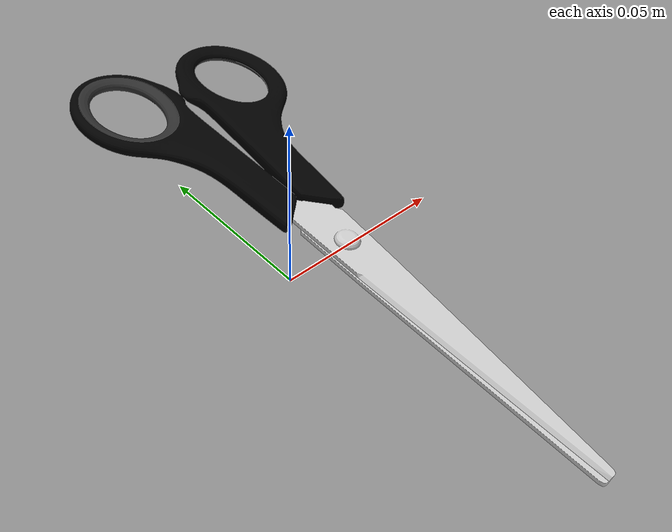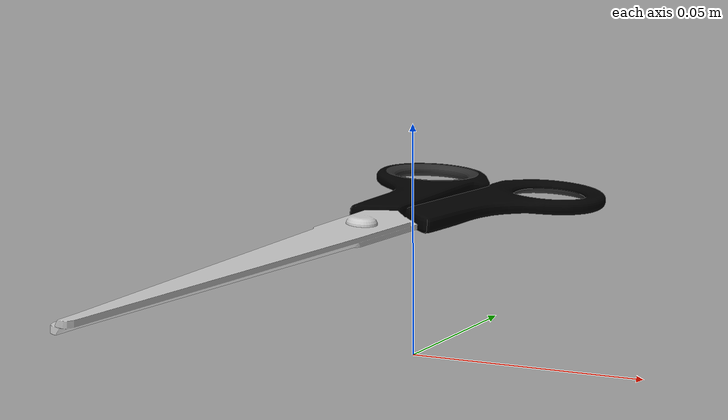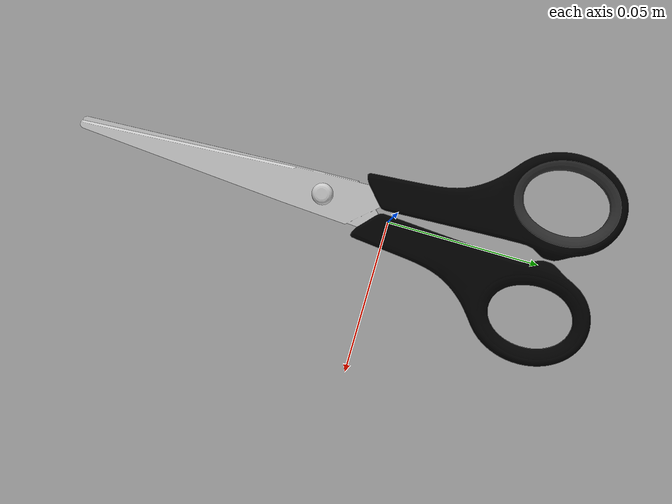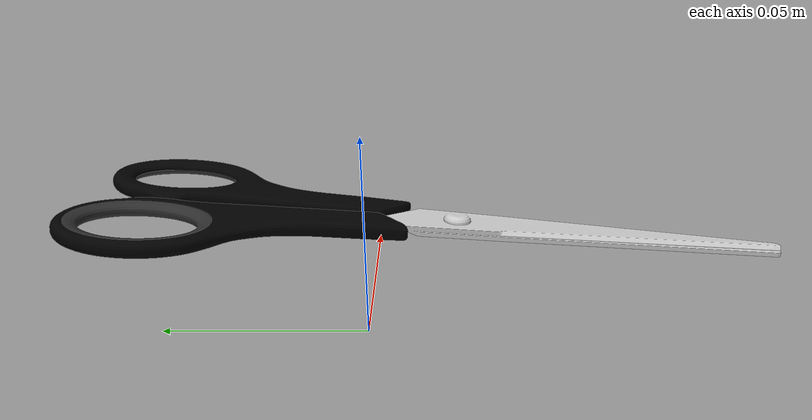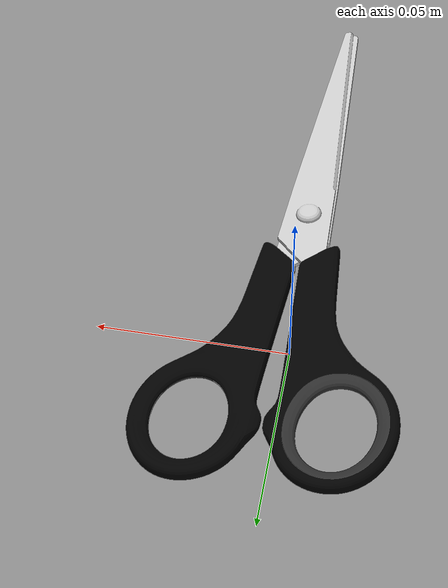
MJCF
<?xml version='1.0' encoding='utf-8'?>
<mujoco model="scissors">
  <default>
    <default class="visual">
      <geom group="1" type="mesh" contype="0" conaffinity="0" />
    </default>
    <default class="collision">
      <geom group="0" type="mesh" contype="1" conaffinity="1"  solref="0.01 1" solimp="0.99 0.99 0.01" margin="0.001" priority="1" friction="5 2 0.0001"/>
    </default>
  </default>
  <asset>
    <material name="PLASTIC_BLACK" specular="0.5" shininess="0.5" rgba="0.000000 0.000000 0.000000 1.000000" />
    <material name="metal" specular="0.5" shininess="0.5" rgba="0.800000 0.800000 0.800000 1.000000" />
    <material name="plastic_grey" specular="0.5" shininess="0.5" rgba="0.179368 0.179368 0.179368 1.000000" />
    <mesh file="scissors_0.obj" name="scissors_0" scale="1.25 1.25 1.25" />
    <mesh file="scissors_1.obj" name="scissors_1" scale="1.25 1.25 1.25" />
    <mesh file="scissors_2.obj" name="scissors_2" scale="1.25 1.25 1.25" />
    <mesh file="scissors_collision_0.obj" name="scissors_collision_0" scale="1.25 1.25 1.25" />
    <mesh file="scissors_collision_1.obj" name="scissors_collision_1" scale="1.25 1.25 1.25" />
    <mesh file="scissors_collision_2.obj" name="scissors_collision_2" scale="1.25 1.25 1.25" />
    <mesh file="scissors_collision_3.obj" name="scissors_collision_3" scale="1.25 1.25 1.25" />
    <mesh file="scissors_collision_4.obj" name="scissors_collision_4" scale="1.25 1.25 1.25" />
    <mesh file="scissors_collision_5.obj" name="scissors_collision_5" scale="1.25 1.25 1.25" />
    <mesh file="scissors_collision_6.obj" name="scissors_collision_6" scale="1.25 1.25 1.25" />
    <mesh file="scissors_collision_7.obj" name="scissors_collision_7" scale="1.25 1.25 1.25" />
    <mesh file="scissors_collision_8.obj" name="scissors_collision_8" scale="1.25 1.25 1.25" />
  </asset>
  <worldbody>
    <body name="base" pos="0 0 0">
      <body name="object">
        <body name="auto_center" pos="-0.000662 -0.101268 0">
          <geom mesh="scissors_0" material="PLASTIC_BLACK" class="visual" />
          <geom mesh="scissors_1" material="plastic_grey" class="visual" />
          <geom mesh="scissors_2" material="metal" class="visual" />
          <geom mesh="scissors_collision_0" rgba="1 0 0 0" class="collision" />
          <geom mesh="scissors_collision_1" rgba="1 0 0 0" class="collision" />
          <geom mesh="scissors_collision_2" rgba="1 0 0 0" class="collision" />
          <geom mesh="scissors_collision_3" rgba="1 0 0 0" class="collision" />
          <geom mesh="scissors_collision_4" rgba="1 0 0 0" class="collision" />
          <geom mesh="scissors_collision_5" rgba="1 0 0 0" class="collision" />
          <geom mesh="scissors_collision_6" rgba="1 0 0 0" class="collision" />
          <geom mesh="scissors_collision_7" rgba="1 0 0 0" class="collision" />
          <geom mesh="scissors_collision_8" rgba="1 0 0 0" class="collision" />
        </body>
      </body>
    </body>
  </worldbody>
</mujoco>
